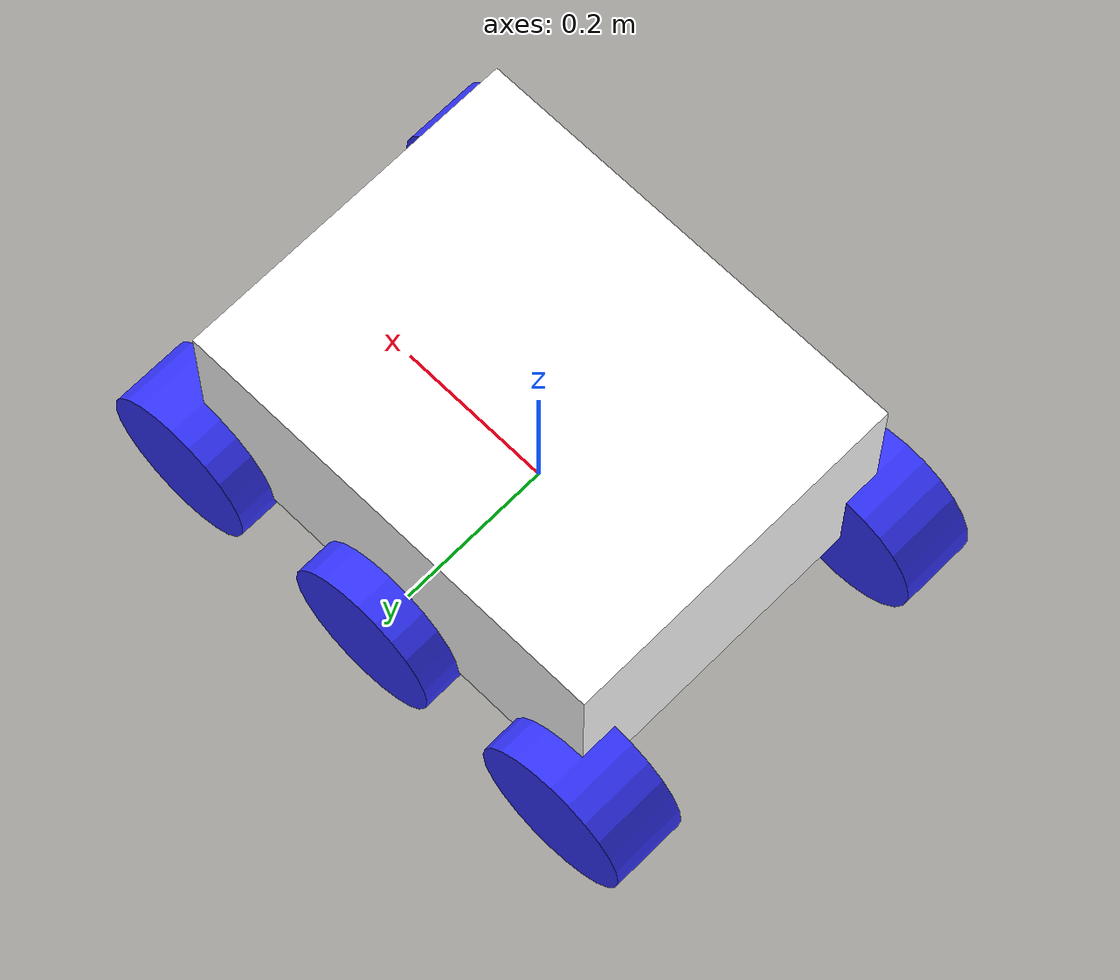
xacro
<?xml version="1.0"?>
<robot xmlns:xacro="http://www.ros.org/wiki/xacro"  name="robot">
    <xacro:include filename="robot_values.xacro"/>
    <xacro:include filename="inertial_macros.xacro"/>

    <material name="white">
        <color rgba="1 1 1 1"/>
    </material>

    <material name="red">
        <color rgba="1 0 0 1"/>
    </material>

    <material name="blue">
        <color rgba="0.2 0.2 1 1"/>
    </material>

    <!-- BASE LINK -->

    <link name="base_link">

    </link>

    <!-- BASE_FOOTPRINT LINK -->

    <joint name="base_footprint_joint" type="fixed">
        <parent link="base_link"/>
        <child link="base_footprint"/>
        <origin xyz="0 0 0" rpy="0 0 0"/>
    </joint>

    <link name="base_footprint">
    </link>

    <!-- CHASSIS LINK -->

    <joint name="chassis_joint" type="fixed">
        <parent link="base_link"/>
        <child link = "chassis"/>
        <origin xyz="-${chassis_x / 2} 0 0"/>
    </joint>

    <link name="chassis">
        <visual>
            <origin xyz="${chassis_x / 2} 0 ${chassis_z / 2}"/>
            <geometry>
                <box size="${chassis_x} ${chassis_y} ${chassis_z}"/>
            </geometry>
            <material name="white"/>
        </visual>
        <collision>
            <origin xyz="${chassis_x / 2} 0 ${chassis_z / 2}"/>
            <geometry>
                <box size="${chassis_x} ${chassis_y} ${chassis_z}"/>
            </geometry>
        </collision>
        <xacro:inertial_box mass="0.5" x="${chassis_x}" y="${chassis_y}" z="${chassis_z}">
            <origin xyz="${chassis_x / 2} 0 ${chassis_z / 2}" rpy="0 0 0"/>
        </xacro:inertial_box>
    </link>

    <gazebo reference="chassis">
        <material>Gazebo/White</material>
    </gazebo>

    <!-- Front Left Wheel Link -->

    <joint name="front_left_wheel_joint" type="continuous">
        <parent link="base_link"/>
        <child link="front_left_wheel"/>
        <origin xyz="${wheel_radius + wheel_separation} ${chassis_y / 2} 0" rpy="-${pi / 2} 0 0"/>
        <axis xyz="0 0 1"/>
    </joint>

    <link name="front_left_wheel">
        <visual>
            <geometry>
                <cylinder radius="${wheel_radius}" length="${wheel_length}"/>
            </geometry>
            <material name="blue"/>
        </visual>
        <collision>
            <geometry>
                <cylinder radius="${wheel_radius}" length="${wheel_length}"/>
            </geometry>
        </collision>
        <xacro:inertial_cylinder mass="0.1" length="${wheel_length}" radius="${wheel_radius}">
            <origin xyz="0 0 0" rpy="0 0 0"/>
        </xacro:inertial_cylinder>
    </link>

    <gazebo reference="front_left_wheel">
        <material>Gazebo/Blue</material>
        <mu1 value="0"/>
        <mu2 value="0"/>
    </gazebo>

    <!-- Middle Left Wheel Link -->

    <joint name="middle_left_wheel_joint" type="continuous">
        <parent link="base_link"/>
        <child link="middle_left_wheel"/>
        <origin xyz="0 ${chassis_y / 2} 0" rpy="-${pi / 2} 0 0"/>
        <axis xyz="0 0 1"/>
    </joint>

    <link name="middle_left_wheel">
        <visual>
            <geometry>
                <cylinder radius="${wheel_radius}" length="${wheel_length}"/>
            </geometry>
            <material name="blue"/>
        </visual>
        <collision>
            <geometry>
                <cylinder radius="${wheel_radius}" length="${wheel_length}"/>
            </geometry>
        </collision>
        <xacro:inertial_cylinder mass="0.1" length="${wheel_length}" radius="${wheel_radius}">
            <origin xyz="0 0 0" rpy="0 0 0"/>
        </xacro:inertial_cylinder>
    </link>

    <gazebo reference="middle_left_wheel">
        <material>Gazebo/Blue</material>
    </gazebo>

    <!-- Back Left Wheel Link -->

    <joint name="back_left_wheel_joint" type="continuous">
        <parent link="base_link"/>
        <child link="back_left_wheel"/>
        <origin xyz="-${wheel_radius + wheel_separation} ${chassis_y / 2} 0" rpy="-${pi / 2} 0 0"/>
        <axis xyz="0 0 1"/>
    </joint>

    <link name="back_left_wheel">
        <visual>
            <geometry>
                <cylinder radius="${wheel_radius}" length="${wheel_length}"/>
            </geometry>
            <material name="blue"/>
        </visual>
        <collision>
            <geometry>
                <cylinder radius="${wheel_radius}" length="${wheel_length}"/>
            </geometry>
        </collision>
        <xacro:inertial_cylinder mass="0.1" length="${wheel_length}" radius="${wheel_radius}">
            <origin xyz="0 0 0" rpy="0 0 0"/>
        </xacro:inertial_cylinder>
    </link>

    <gazebo reference="back_left_wheel">
        <material>Gazebo/Blue</material>
        <mu1 value="0"/>
        <mu2 value="0"/>
    </gazebo>

    <!-- Front Right Wheel Link -->

    <joint name="front_right_wheel_joint" type="continuous">
        <parent link="base_link"/>
        <child link="front_right_wheel"/>
        <origin xyz="${wheel_radius + wheel_separation} -${chassis_y / 2} 0" rpy="-${pi / 2} 0 ${pi}"/>
        <axis xyz="0 0 -1"/>
    </joint>

    <link name="front_right_wheel">
        <visual>
            <geometry>
                <cylinder radius="${wheel_radius}" length="${wheel_length}"/>
            </geometry>
            <material name="blue"/>
        </visual>
        <collision>
            <geometry>
                <cylinder radius="${wheel_radius}" length="${wheel_length}"/>
            </geometry>
        </collision>
        <xacro:inertial_cylinder mass="0.1" length="${wheel_length}" radius="${wheel_radius}">
            <origin xyz="0 0 0" rpy="0 0 0"/>
        </xacro:inertial_cylinder>
    </link>

    <gazebo reference="front_right_wheel">
        <material>Gazebo/Blue</material>
        <mu1 value="0"/>
        <mu2 value="0"/>
    </gazebo>

    <!-- Middle Right Wheel Link -->

    <joint name="middle_right_wheel_joint" type="continuous">
        <parent link="base_link"/>
        <child link="middle_right_wheel"/>
        <origin xyz="0 -${chassis_y / 2} 0" rpy="-${pi / 2} 0 ${pi}"/>
        <axis xyz="0 0 -1"/>
    </joint>

    <link name="middle_right_wheel">
        <visual>
            <geometry>
                <cylinder radius="${wheel_radius}" length="${wheel_length}"/>
            </geometry>
            <material name="blue"/>
        </visual>
        <collision>
            <geometry>
                <cylinder radius="${wheel_radius}" length="${wheel_length}"/>
            </geometry>
        </collision>
        <xacro:inertial_cylinder mass="0.1" length="${wheel_length}" radius="${wheel_radius}">
            <origin xyz="0 0 0" rpy="0 0 0"/>
        </xacro:inertial_cylinder>
    </link>

    <gazebo reference="middle_right_wheel">
        <material>Gazebo/Blue</material>
    </gazebo>

    <!-- Back right Wheel Link -->

    <joint name="back_right_wheel_joint" type="continuous">
        <parent link="base_link"/>
        <child link="back_right_wheel"/>
        <origin xyz="-${wheel_radius + wheel_separation} -${chassis_y / 2} 0" rpy="-${pi / 2} 0 ${pi}"/>
        <axis xyz="0 0 -1"/>
    </joint>

    <link name="back_right_wheel">
        <visual>
            <geometry>
                <cylinder radius="${wheel_radius}" length="${wheel_length}"/>
            </geometry>
            <material name="blue"/>
        </visual>
        <collision>
            <geometry>
                <cylinder radius="${wheel_radius}" length="${wheel_length}"/>
            </geometry>
        </collision>
        <xacro:inertial_cylinder mass="0.1" length="${wheel_length}" radius="${wheel_radius}">
            <origin xyz="0 0 0" rpy="0 0 0"/>
        </xacro:inertial_cylinder>
    </link>

    <gazebo reference="back_right_wheel">
        <material>Gazebo/Blue</material>
        <mu1 value="0"/>
        <mu2 value="0"/>
    </gazebo>
</robot>

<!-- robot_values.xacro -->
<robot xmlns:xacro="http://www.ros.org/wiki/xacro"  name="robot">
    <xacro:property name="chassis_x" value="0.568"/>
    <xacro:property name="chassis_y" value="0.4464"/>
    <xacro:property name="chassis_z" value="0.2632"/>
    <xacro:property name="wheel_radius" value="0.1"/>
    <xacro:property name="wheel_length" value="0.09525"/>
    <xacro:property name="wheel_separation" value="${(chassis_x - (wheel_radius * 2)) / 2}"/>
    <xacro:property name="lidar_radius" value="0.05"/>
    <xacro:property name="lidar_height" value="0.04"/>
</robot>
